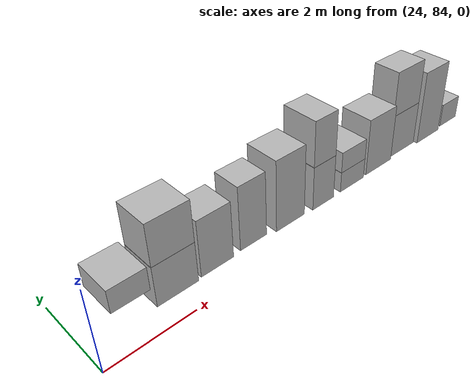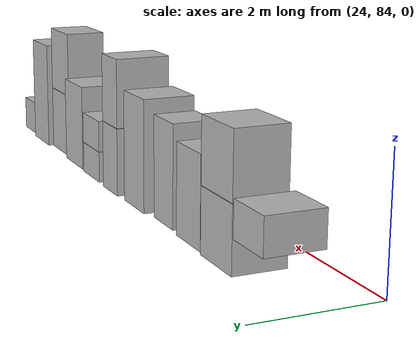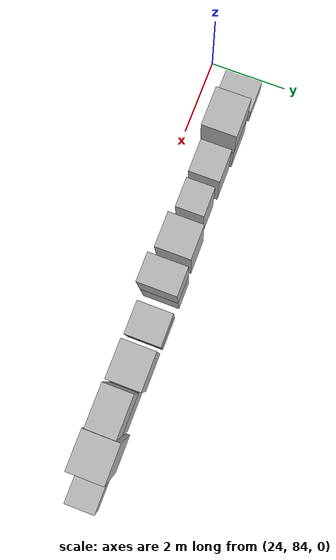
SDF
<sdf version="1.5">
 <world name="default">
  <model name="ground_plane">
   <static>true</static>
   <link name="link">
    <collision name="collision">
     <geometry><plane><normal>0 0 1</normal><size>250 250</size></plane></geometry>
     <surface><friction><ode><mu>1</mu><mu2>1</mu2></ode></friction></surface>
    </collision>
    <visual name="grass">
     <cast_shadows>false</cast_shadows>
     <geometry><mesh><uri>file://grass_plane/meshes/grass_plane.dae</uri></mesh></geometry>
    </visual>
   </link>
  </model>
  <model name="Cardboard_box_top_225">
   <link name="link_0">
    <pose>25 85 0.564195462318 0 0 0</pose>
    <inertial>
     <mass>1</mass>
     <inertia>
      <ixx>0.166667</ixx>
      <ixy>0</ixy>
      <ixz>0</ixz>
      <iyy>0.166667</iyy>
      <iyz>0</iyz>
      <izz>0.166667</izz>
     </inertia>
    </inertial>
    <collision name="collision">
     <geometry>
      <mesh>
       <uri>model://Cardboard_box/meshes/cardboard_box.dae</uri>
       <scale>2.07757420445 2.32227323386 1.4104886558</scale>
      </mesh>
     </geometry>
    </collision>
    <visual name="visual">
     <geometry>
      <mesh>
       <uri>model://Cardboard_box/meshes/cardboard_box.dae</uri>
       <scale>2.07757420445 2.32227323386 1.4104886558</scale>
      </mesh>
     </geometry>
    </visual>
   </link>
   <static>1</static>
  </model>
  <model name="Cardboard_box_226">
   <link name="link_0">
    <pose>26 85 0 0 0 0</pose>
    <inertial>
     <mass>1</mass>
     <inertia>
      <ixx>0.166667</ixx>
      <ixy>0</ixy>
      <ixz>0</ixz>
      <iyy>0.166667</iyy>
      <iyz>0</iyz>
      <izz>0.166667</izz>
     </inertia>
    </inertial>
    <collision name="collision">
     <geometry>
      <mesh>
       <uri>model://Cardboard_box/meshes/cardboard_box.dae</uri>
       <scale>2.45596355534 2.14657621019 2.5494820591</scale>
      </mesh>
     </geometry>
    </collision>
    <visual name="visual">
     <geometry>
      <mesh>
       <uri>model://Cardboard_box/meshes/cardboard_box.dae</uri>
       <scale>2.45596355534 2.14657621019 2.5494820591</scale>
      </mesh>
     </geometry>
    </visual>
   </link>
   <static>1</static>
  </model>
  <model name="Cardboard_box_top_226">
   <link name="link_0">
    <pose>26 85 1.01979282364 0 0 0</pose>
    <inertial>
     <mass>1</mass>
     <inertia>
      <ixx>0.166667</ixx>
      <ixy>0</ixy>
      <ixz>0</ixz>
      <iyy>0.166667</iyy>
      <iyz>0</iyz>
      <izz>0.166667</izz>
     </inertia>
    </inertial>
    <collision name="collision">
     <geometry>
      <mesh>
       <uri>model://Cardboard_box/meshes/cardboard_box.dae</uri>
       <scale>2.45596355534 2.14657621019 2.5494820591</scale>
      </mesh>
     </geometry>
    </collision>
    <visual name="visual">
     <geometry>
      <mesh>
       <uri>model://Cardboard_box/meshes/cardboard_box.dae</uri>
       <scale>2.45596355534 2.14657621019 2.5494820591</scale>
      </mesh>
     </geometry>
    </visual>
   </link>
   <static>1</static>
  </model>
  <model name="Cardboard_box_227">
   <link name="link_0">
    <pose>27 85 0 0 0 0</pose>
    <inertial>
     <mass>1</mass>
     <inertia>
      <ixx>0.166667</ixx>
      <ixy>0</ixy>
      <ixz>0</ixz>
      <iyy>0.166667</iyy>
      <iyz>0</iyz>
      <izz>0.166667</izz>
     </inertia>
    </inertial>
    <collision name="collision">
     <geometry>
      <mesh>
       <uri>model://Cardboard_box/meshes/cardboard_box.dae</uri>
       <scale>2.09637205883 1.94311549356 3.62205062758</scale>
      </mesh>
     </geometry>
    </collision>
    <visual name="visual">
     <geometry>
      <mesh>
       <uri>model://Cardboard_box/meshes/cardboard_box.dae</uri>
       <scale>2.09637205883 1.94311549356 3.62205062758</scale>
      </mesh>
     </geometry>
    </visual>
   </link>
   <static>1</static>
  </model>
  <model name="Cardboard_box_228">
   <link name="link_0">
    <pose>28 85 0 0 0 0</pose>
    <inertial>
     <mass>1</mass>
     <inertia>
      <ixx>0.166667</ixx>
      <ixy>0</ixy>
      <ixz>0</ixz>
      <iyy>0.166667</iyy>
      <iyz>0</iyz>
      <izz>0.166667</izz>
     </inertia>
    </inertial>
    <collision name="collision">
     <geometry>
      <mesh>
       <uri>model://Cardboard_box/meshes/cardboard_box.dae</uri>
       <scale>1.84063219193 1.74590419481 4.15014678991</scale>
      </mesh>
     </geometry>
    </collision>
    <visual name="visual">
     <geometry>
      <mesh>
       <uri>model://Cardboard_box/meshes/cardboard_box.dae</uri>
       <scale>1.84063219193 1.74590419481 4.15014678991</scale>
      </mesh>
     </geometry>
    </visual>
   </link>
   <static>1</static>
  </model>
  <model name="Cardboard_box_229">
   <link name="link_0">
    <pose>29 85 0 0 0 0</pose>
    <inertial>
     <mass>1</mass>
     <inertia>
      <ixx>0.166667</ixx>
      <ixy>0</ixy>
      <ixz>0</ixz>
      <iyy>0.166667</iyy>
      <iyz>0</iyz>
      <izz>0.166667</izz>
     </inertia>
    </inertial>
    <collision name="collision">
     <geometry>
      <mesh>
       <uri>model://Cardboard_box/meshes/cardboard_box.dae</uri>
       <scale>2.13692652704 2.17049608028 4.64167203204</scale>
      </mesh>
     </geometry>
    </collision>
    <visual name="visual">
     <geometry>
      <mesh>
       <uri>model://Cardboard_box/meshes/cardboard_box.dae</uri>
       <scale>2.13692652704 2.17049608028 4.64167203204</scale>
      </mesh>
     </geometry>
    </visual>
   </link>
   <static>1</static>
  </model>
  <model name="Cardboard_box_230">
   <link name="link_0">
    <pose>30 85 0 0 0 0</pose>
    <inertial>
     <mass>1</mass>
     <inertia>
      <ixx>0.166667</ixx>
      <ixy>0</ixy>
      <ixz>0</ixz>
      <iyy>0.166667</iyy>
      <iyz>0</iyz>
      <izz>0.166667</izz>
     </inertia>
    </inertial>
    <collision name="collision">
     <geometry>
      <mesh>
       <uri>model://Cardboard_box/meshes/cardboard_box.dae</uri>
       <scale>1.71790459084 2.34259193557 2.89527991753</scale>
      </mesh>
     </geometry>
    </collision>
    <visual name="visual">
     <geometry>
      <mesh>
       <uri>model://Cardboard_box/meshes/cardboard_box.dae</uri>
       <scale>1.71790459084 2.34259193557 2.89527991753</scale>
      </mesh>
     </geometry>
    </visual>
   </link>
   <static>1</static>
  </model>
  <model name="Cardboard_box_top_230">
   <link name="link_0">
    <pose>30 85 1.15811196701 0 0 0</pose>
    <inertial>
     <mass>1</mass>
     <inertia>
      <ixx>0.166667</ixx>
      <ixy>0</ixy>
      <ixz>0</ixz>
      <iyy>0.166667</iyy>
      <iyz>0</iyz>
      <izz>0.166667</izz>
     </inertia>
    </inertial>
    <collision name="collision">
     <geometry>
      <mesh>
       <uri>model://Cardboard_box/meshes/cardboard_box.dae</uri>
       <scale>1.71790459084 2.34259193557 2.89527991753</scale>
      </mesh>
     </geometry>
    </collision>
    <visual name="visual">
     <geometry>
      <mesh>
       <uri>model://Cardboard_box/meshes/cardboard_box.dae</uri>
       <scale>1.71790459084 2.34259193557 2.89527991753</scale>
      </mesh>
     </geometry>
    </visual>
   </link>
   <static>1</static>
  </model>
  <model name="Cardboard_box_231">
   <link name="link_0">
    <pose>31 85 0 0 0 0</pose>
    <inertial>
     <mass>1</mass>
     <inertia>
      <ixx>0.166667</ixx>
      <ixy>0</ixy>
      <ixz>0</ixz>
      <iyy>0.166667</iyy>
      <iyz>0</iyz>
      <izz>0.166667</izz>
     </inertia>
    </inertial>
    <collision name="collision">
     <geometry>
      <mesh>
       <uri>model://Cardboard_box/meshes/cardboard_box.dae</uri>
       <scale>2.06085756539 2.26147213903 1.3603822547</scale>
      </mesh>
     </geometry>
    </collision>
    <visual name="visual">
     <geometry>
      <mesh>
       <uri>model://Cardboard_box/meshes/cardboard_box.dae</uri>
       <scale>2.06085756539 2.26147213903 1.3603822547</scale>
      </mesh>
     </geometry>
    </visual>
   </link>
   <static>1</static>
  </model>
  <model name="Cardboard_box_top_231">
   <link name="link_0">
    <pose>31 85 0.54415290188 0 0 0</pose>
    <inertial>
     <mass>1</mass>
     <inertia>
      <ixx>0.166667</ixx>
      <ixy>0</ixy>
      <ixz>0</ixz>
      <iyy>0.166667</iyy>
      <iyz>0</iyz>
      <izz>0.166667</izz>
     </inertia>
    </inertial>
    <collision name="collision">
     <geometry>
      <mesh>
       <uri>model://Cardboard_box/meshes/cardboard_box.dae</uri>
       <scale>2.06085756539 2.26147213903 1.3603822547</scale>
      </mesh>
     </geometry>
    </collision>
    <visual name="visual">
     <geometry>
      <mesh>
       <uri>model://Cardboard_box/meshes/cardboard_box.dae</uri>
       <scale>2.06085756539 2.26147213903 1.3603822547</scale>
      </mesh>
     </geometry>
    </visual>
   </link>
   <static>1</static>
  </model>
  <model name="Cardboard_box_232">
   <link name="link_0">
    <pose>32 85 0 0 0 0</pose>
    <inertial>
     <mass>1</mass>
     <inertia>
      <ixx>0.166667</ixx>
      <ixy>0</ixy>
      <ixz>0</ixz>
      <iyy>0.166667</iyy>
      <iyz>0</iyz>
      <izz>0.166667</izz>
     </inertia>
    </inertial>
    <collision name="collision">
     <geometry>
      <mesh>
       <uri>model://Cardboard_box/meshes/cardboard_box.dae</uri>
       <scale>2.37281314493 2.13943718954 3.81864221332</scale>
      </mesh>
     </geometry>
    </collision>
    <visual name="visual">
     <geometry>
      <mesh>
       <uri>model://Cardboard_box/meshes/cardboard_box.dae</uri>
       <scale>2.37281314493 2.13943718954 3.81864221332</scale>
      </mesh>
     </geometry>
    </visual>
   </link>
   <static>1</static>
  </model>
  <model name="Cardboard_box_233">
   <link name="link_0">
    <pose>33 85 0 0 0 0</pose>
    <inertial>
     <mass>1</mass>
     <inertia>
      <ixx>0.166667</ixx>
      <ixy>0</ixy>
      <ixz>0</ixz>
      <iyy>0.166667</iyy>
      <iyz>0</iyz>
      <izz>0.166667</izz>
     </inertia>
    </inertial>
    <collision name="collision">
     <geometry>
      <mesh>
       <uri>model://Cardboard_box/meshes/cardboard_box.dae</uri>
       <scale>2.47978997929 1.77931837329 2.93544691305</scale>
      </mesh>
     </geometry>
    </collision>
    <visual name="visual">
     <geometry>
      <mesh>
       <uri>model://Cardboard_box/meshes/cardboard_box.dae</uri>
       <scale>2.47978997929 1.77931837329 2.93544691305</scale>
      </mesh>
     </geometry>
    </visual>
   </link>
   <static>1</static>
  </model>
  <model name="Cardboard_box_top_233">
   <link name="link_0">
    <pose>33 85 1.17417876522 0 0 0</pose>
    <inertial>
     <mass>1</mass>
     <inertia>
      <ixx>0.166667</ixx>
      <ixy>0</ixy>
      <ixz>0</ixz>
      <iyy>0.166667</iyy>
      <iyz>0</iyz>
      <izz>0.166667</izz>
     </inertia>
    </inertial>
    <collision name="collision">
     <geometry>
      <mesh>
       <uri>model://Cardboard_box/meshes/cardboard_box.dae</uri>
       <scale>2.47978997929 1.77931837329 2.93544691305</scale>
      </mesh>
     </geometry>
    </collision>
    <visual name="visual">
     <geometry>
      <mesh>
       <uri>model://Cardboard_box/meshes/cardboard_box.dae</uri>
       <scale>2.47978997929 1.77931837329 2.93544691305</scale>
      </mesh>
     </geometry>
    </visual>
   </link>
   <static>1</static>
  </model>
  <model name="Cardboard_box_234">
   <link name="link_0">
    <pose>34 85 0 0 0 0</pose>
    <inertial>
     <mass>1</mass>
     <inertia>
      <ixx>0.166667</ixx>
      <ixy>0</ixy>
      <ixz>0</ixz>
      <iyy>0.166667</iyy>
      <iyz>0</iyz>
      <izz>0.166667</izz>
     </inertia>
    </inertial>
    <collision name="collision">
     <geometry>
      <mesh>
       <uri>model://Cardboard_box/meshes/cardboard_box.dae</uri>
       <scale>2.31186809032 2.20848017142 5.00951857934</scale>
      </mesh>
     </geometry>
    </collision>
    <visual name="visual">
     <geometry>
      <mesh>
       <uri>model://Cardboard_box/meshes/cardboard_box.dae</uri>
       <scale>2.31186809032 2.20848017142 5.00951857934</scale>
      </mesh>
     </geometry>
    </visual>
   </link>
   <static>1</static>
  </model>
  <model name="Cardboard_box_235">
   <link name="link_0">
    <pose>35 85 0 0 0 0</pose>
    <inertial>
     <mass>1</mass>
     <inertia>
      <ixx>0.166667</ixx>
      <ixy>0</ixy>
      <ixz>0</ixz>
      <iyy>0.166667</iyy>
      <iyz>0</iyz>
      <izz>0.166667</izz>
     </inertia>
    </inertial>
    <collision name="collision">
     <geometry>
      <mesh>
       <uri>model://Cardboard_box/meshes/cardboard_box.dae</uri>
       <scale>1.81465931483 1.85825643379 1.59720532312</scale>
      </mesh>
     </geometry>
    </collision>
    <visual name="visual">
     <geometry>
      <mesh>
       <uri>model://Cardboard_box/meshes/cardboard_box.dae</uri>
       <scale>1.81465931483 1.85825643379 1.59720532312</scale>
      </mesh>
     </geometry>
    </visual>
   </link>
   <static>1</static>
  </model>
 </world>
</sdf>
